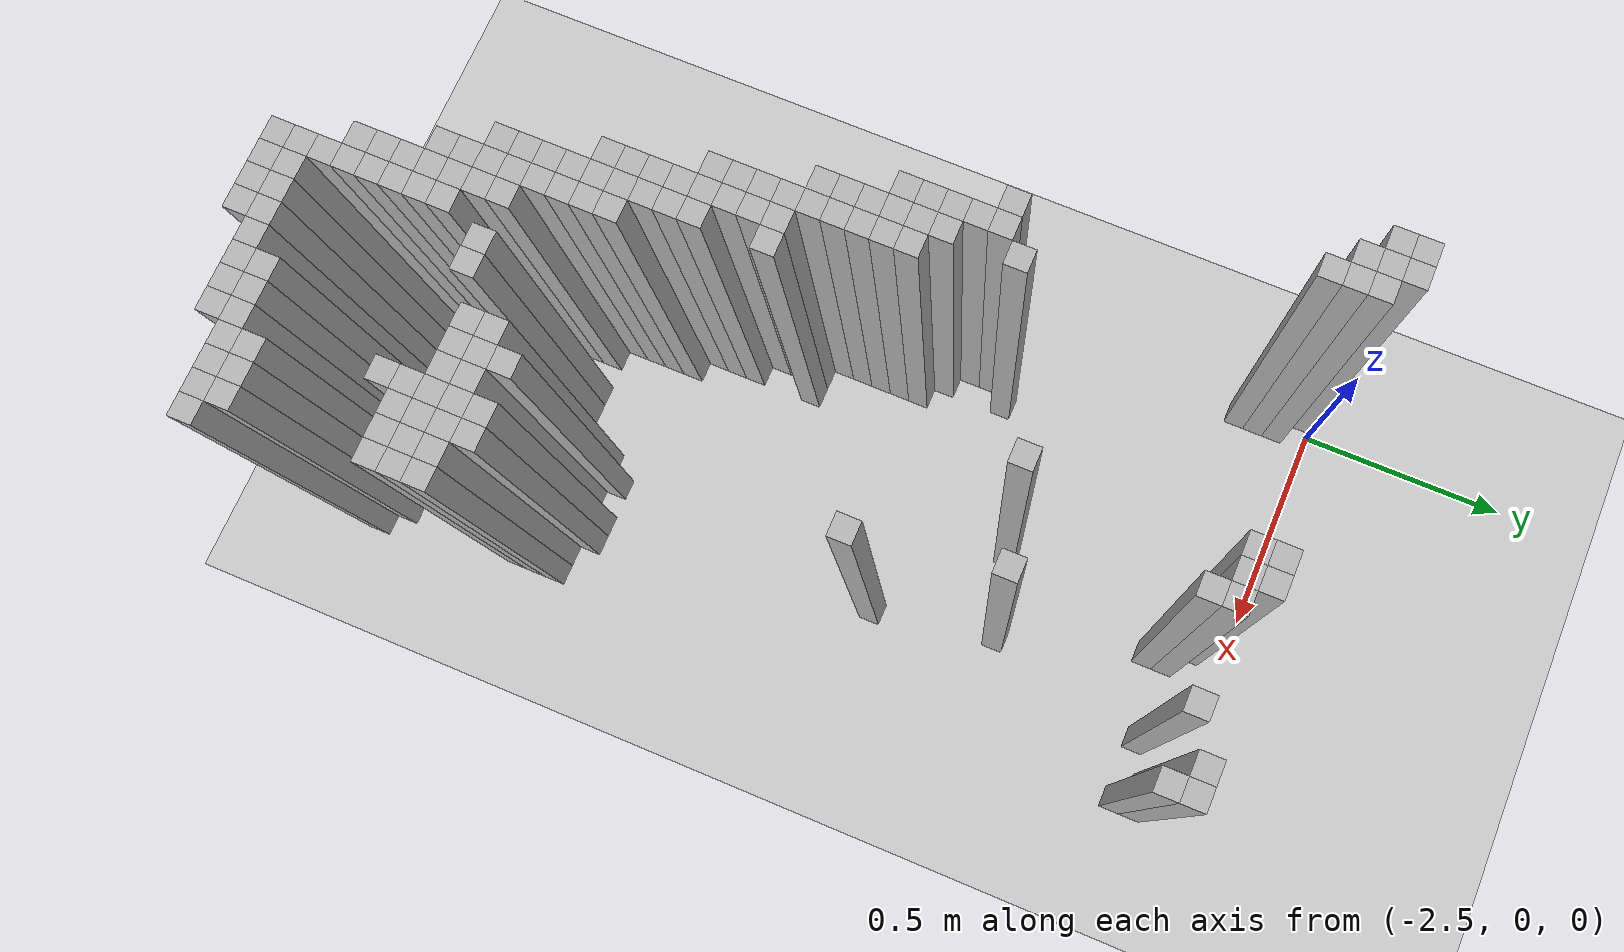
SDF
<sdf version="1.6">
 <world name="default">
  <include><uri>model://ground_plane</uri></include>
  <include><uri>model://sun</uri></include>
  <model name="wall_383">
   <static>true</static>
   <pose>-2.59 -0.03000000000000025 0.5 0 0 0</pose>
   <link name="link">
    <collision name="collision"><geometry><box><size>0.05 0.05 1</size></box></geometry></collision>
    <visual name="visual"><geometry><box><size>0.05 0.05 1</size></box></geometry></visual>
   </link>
  </model>
  <model name="wall_384">
   <static>true</static>
   <pose>-2.54 -0.03000000000000025 0.5 0 0 0</pose>
   <link name="link">
    <collision name="collision"><geometry><box><size>0.05 0.05 1</size></box></geometry></collision>
    <visual name="visual"><geometry><box><size>0.05 0.05 1</size></box></geometry></visual>
   </link>
  </model>
  <model name="wall_389">
   <static>true</static>
   <pose>-2.59 -0.08000000000000007 0.5 0 0 0</pose>
   <link name="link">
    <collision name="collision"><geometry><box><size>0.05 0.05 1</size></box></geometry></collision>
    <visual name="visual"><geometry><box><size>0.05 0.05 1</size></box></geometry></visual>
   </link>
  </model>
  <model name="wall_390">
   <static>true</static>
   <pose>-2.54 -0.08000000000000007 0.5 0 0 0</pose>
   <link name="link">
    <collision name="collision"><geometry><box><size>0.05 0.05 1</size></box></geometry></collision>
    <visual name="visual"><geometry><box><size>0.05 0.05 1</size></box></geometry></visual>
   </link>
  </model>
  <model name="wall_391">
   <static>true</static>
   <pose>-2.4899999999999998 -0.08000000000000007 0.5 0 0 0</pose>
   <link name="link">
    <collision name="collision"><geometry><box><size>0.05 0.05 1</size></box></geometry></collision>
    <visual name="visual"><geometry><box><size>0.05 0.05 1</size></box></geometry></visual>
   </link>
  </model>
  <model name="wall_392">
   <static>true</static>
   <pose>-1.94 -0.08000000000000007 0.5 0 0 0</pose>
   <link name="link">
    <collision name="collision"><geometry><box><size>0.05 0.05 1</size></box></geometry></collision>
    <visual name="visual"><geometry><box><size>0.05 0.05 1</size></box></geometry></visual>
   </link>
  </model>
  <model name="wall_393">
   <static>true</static>
   <pose>-1.8899999999999997 -0.08000000000000007 0.5 0 0 0</pose>
   <link name="link">
    <collision name="collision"><geometry><box><size>0.05 0.05 1</size></box></geometry></collision>
    <visual name="visual"><geometry><box><size>0.05 0.05 1</size></box></geometry></visual>
   </link>
  </model>
  <model name="wall_394">
   <static>true</static>
   <pose>-1.5399999999999998 -0.08000000000000007 0.5 0 0 0</pose>
   <link name="link">
    <collision name="collision"><geometry><box><size>0.05 0.05 1</size></box></geometry></collision>
    <visual name="visual"><geometry><box><size>0.05 0.05 1</size></box></geometry></visual>
   </link>
  </model>
  <model name="wall_395">
   <static>true</static>
   <pose>-1.4899999999999998 -0.08000000000000007 0.5 0 0 0</pose>
   <link name="link">
    <collision name="collision"><geometry><box><size>0.05 0.05 1</size></box></geometry></collision>
    <visual name="visual"><geometry><box><size>0.05 0.05 1</size></box></geometry></visual>
   </link>
  </model>
  <model name="wall_400">
   <static>true</static>
   <pose>-2.54 -0.1299999999999999 0.5 0 0 0</pose>
   <link name="link">
    <collision name="collision"><geometry><box><size>0.05 0.05 1</size></box></geometry></collision>
    <visual name="visual"><geometry><box><size>0.05 0.05 1</size></box></geometry></visual>
   </link>
  </model>
  <model name="wall_401">
   <static>true</static>
   <pose>-2.4899999999999998 -0.1299999999999999 0.5 0 0 0</pose>
   <link name="link">
    <collision name="collision"><geometry><box><size>0.05 0.05 1</size></box></geometry></collision>
    <visual name="visual"><geometry><box><size>0.05 0.05 1</size></box></geometry></visual>
   </link>
  </model>
  <model name="wall_402">
   <static>true</static>
   <pose>-1.94 -0.1299999999999999 0.5 0 0 0</pose>
   <link name="link">
    <collision name="collision"><geometry><box><size>0.05 0.05 1</size></box></geometry></collision>
    <visual name="visual"><geometry><box><size>0.05 0.05 1</size></box></geometry></visual>
   </link>
  </model>
  <model name="wall_403">
   <static>true</static>
   <pose>-1.8899999999999997 -0.1299999999999999 0.5 0 0 0</pose>
   <link name="link">
    <collision name="collision"><geometry><box><size>0.05 0.05 1</size></box></geometry></collision>
    <visual name="visual"><geometry><box><size>0.05 0.05 1</size></box></geometry></visual>
   </link>
  </model>
  <model name="wall_404">
   <static>true</static>
   <pose>-1.8399999999999999 -0.1299999999999999 0.5 0 0 0</pose>
   <link name="link">
    <collision name="collision"><geometry><box><size>0.05 0.05 1</size></box></geometry></collision>
    <visual name="visual"><geometry><box><size>0.05 0.05 1</size></box></geometry></visual>
   </link>
  </model>
  <model name="wall_405">
   <static>true</static>
   <pose>-1.6399999999999997 -0.1299999999999999 0.5 0 0 0</pose>
   <link name="link">
    <collision name="collision"><geometry><box><size>0.05 0.05 1</size></box></geometry></collision>
    <visual name="visual"><geometry><box><size>0.05 0.05 1</size></box></geometry></visual>
   </link>
  </model>
  <model name="wall_406">
   <static>true</static>
   <pose>-1.4899999999999998 -0.1299999999999999 0.5 0 0 0</pose>
   <link name="link">
    <collision name="collision"><geometry><box><size>0.05 0.05 1</size></box></geometry></collision>
    <visual name="visual"><geometry><box><size>0.05 0.05 1</size></box></geometry></visual>
   </link>
  </model>
  <model name="wall_415">
   <static>true</static>
   <pose>-2.4899999999999998 -0.18000000000000016 0.5 0 0 0</pose>
   <link name="link">
    <collision name="collision"><geometry><box><size>0.05 0.05 1</size></box></geometry></collision>
    <visual name="visual"><geometry><box><size>0.05 0.05 1</size></box></geometry></visual>
   </link>
  </model>
  <model name="wall_416">
   <static>true</static>
   <pose>-1.8399999999999999 -0.18000000000000016 0.5 0 0 0</pose>
   <link name="link">
    <collision name="collision"><geometry><box><size>0.05 0.05 1</size></box></geometry></collision>
    <visual name="visual"><geometry><box><size>0.05 0.05 1</size></box></geometry></visual>
   </link>
  </model>
  <model name="wall_461">
   <static>true</static>
   <pose>-1.7399999999999998 -0.53 0.5 0 0 0</pose>
   <link name="link">
    <collision name="collision"><geometry><box><size>0.05 0.05 1</size></box></geometry></collision>
    <visual name="visual"><geometry><box><size>0.05 0.05 1</size></box></geometry></visual>
   </link>
  </model>
  <model name="wall_465">
   <static>true</static>
   <pose>-1.94 -0.5800000000000001 0.5 0 0 0</pose>
   <link name="link">
    <collision name="collision"><geometry><box><size>0.05 0.05 1</size></box></geometry></collision>
    <visual name="visual"><geometry><box><size>0.05 0.05 1</size></box></geometry></visual>
   </link>
  </model>
  <model name="wall_480">
   <static>true</static>
   <pose>-2.29 -0.73 0.5 0 0 0</pose>
   <link name="link">
    <collision name="collision"><geometry><box><size>0.05 0.05 1</size></box></geometry></collision>
    <visual name="visual"><geometry><box><size>0.05 0.05 1</size></box></geometry></visual>
   </link>
  </model>
  <model name="wall_484">
   <static>true</static>
   <pose>-2.3899999999999997 -0.78 0.5 0 0 0</pose>
   <link name="link">
    <collision name="collision"><geometry><box><size>0.05 0.05 1</size></box></geometry></collision>
    <visual name="visual"><geometry><box><size>0.05 0.05 1</size></box></geometry></visual>
   </link>
  </model>
  <model name="wall_485">
   <static>true</static>
   <pose>-2.34 -0.78 0.5 0 0 0</pose>
   <link name="link">
    <collision name="collision"><geometry><box><size>0.05 0.05 1</size></box></geometry></collision>
    <visual name="visual"><geometry><box><size>0.05 0.05 1</size></box></geometry></visual>
   </link>
  </model>
  <model name="wall_491">
   <static>true</static>
   <pose>-2.34 -0.8300000000000001 0.5 0 0 0</pose>
   <link name="link">
    <collision name="collision"><geometry><box><size>0.05 0.05 1</size></box></geometry></collision>
    <visual name="visual"><geometry><box><size>0.05 0.05 1</size></box></geometry></visual>
   </link>
  </model>
  <model name="wall_492">
   <static>true</static>
   <pose>-1.6899999999999997 -0.8300000000000001 0.5 0 0 0</pose>
   <link name="link">
    <collision name="collision"><geometry><box><size>0.05 0.05 1</size></box></geometry></collision>
    <visual name="visual"><geometry><box><size>0.05 0.05 1</size></box></geometry></visual>
   </link>
  </model>
  <model name="wall_496">
   <static>true</static>
   <pose>-2.34 -0.8800000000000001 0.5 0 0 0</pose>
   <link name="link">
    <collision name="collision"><geometry><box><size>0.05 0.05 1</size></box></geometry></collision>
    <visual name="visual"><geometry><box><size>0.05 0.05 1</size></box></geometry></visual>
   </link>
  </model>
  <model name="wall_497">
   <static>true</static>
   <pose>-2.29 -0.8800000000000001 0.5 0 0 0</pose>
   <link name="link">
    <collision name="collision"><geometry><box><size>0.05 0.05 1</size></box></geometry></collision>
    <visual name="visual"><geometry><box><size>0.05 0.05 1</size></box></geometry></visual>
   </link>
  </model>
  <model name="wall_502">
   <static>true</static>
   <pose>-2.34 -0.9300000000000002 0.5 0 0 0</pose>
   <link name="link">
    <collision name="collision"><geometry><box><size>0.05 0.05 1</size></box></geometry></collision>
    <visual name="visual"><geometry><box><size>0.05 0.05 1</size></box></geometry></visual>
   </link>
  </model>
  <model name="wall_503">
   <static>true</static>
   <pose>-2.29 -0.9300000000000002 0.5 0 0 0</pose>
   <link name="link">
    <collision name="collision"><geometry><box><size>0.05 0.05 1</size></box></geometry></collision>
    <visual name="visual"><geometry><box><size>0.05 0.05 1</size></box></geometry></visual>
   </link>
  </model>
  <model name="wall_504">
   <static>true</static>
   <pose>-2.2399999999999998 -0.9300000000000002 0.5 0 0 0</pose>
   <link name="link">
    <collision name="collision"><geometry><box><size>0.05 0.05 1</size></box></geometry></collision>
    <visual name="visual"><geometry><box><size>0.05 0.05 1</size></box></geometry></visual>
   </link>
  </model>
  <model name="wall_508">
   <static>true</static>
   <pose>-2.34 -0.98 0.5 0 0 0</pose>
   <link name="link">
    <collision name="collision"><geometry><box><size>0.05 0.05 1</size></box></geometry></collision>
    <visual name="visual"><geometry><box><size>0.05 0.05 1</size></box></geometry></visual>
   </link>
  </model>
  <model name="wall_509">
   <static>true</static>
   <pose>-2.29 -0.98 0.5 0 0 0</pose>
   <link name="link">
    <collision name="collision"><geometry><box><size>0.05 0.05 1</size></box></geometry></collision>
    <visual name="visual"><geometry><box><size>0.05 0.05 1</size></box></geometry></visual>
   </link>
  </model>
  <model name="wall_510">
   <static>true</static>
   <pose>-2.2399999999999998 -0.98 0.5 0 0 0</pose>
   <link name="link">
    <collision name="collision"><geometry><box><size>0.05 0.05 1</size></box></geometry></collision>
    <visual name="visual"><geometry><box><size>0.05 0.05 1</size></box></geometry></visual>
   </link>
  </model>
  <model name="wall_514">
   <static>true</static>
   <pose>-2.29 -1.03 0.5 0 0 0</pose>
   <link name="link">
    <collision name="collision"><geometry><box><size>0.05 0.05 1</size></box></geometry></collision>
    <visual name="visual"><geometry><box><size>0.05 0.05 1</size></box></geometry></visual>
   </link>
  </model>
  <model name="wall_515">
   <static>true</static>
   <pose>-2.2399999999999998 -1.03 0.5 0 0 0</pose>
   <link name="link">
    <collision name="collision"><geometry><box><size>0.05 0.05 1</size></box></geometry></collision>
    <visual name="visual"><geometry><box><size>0.05 0.05 1</size></box></geometry></visual>
   </link>
  </model>
  <model name="wall_518">
   <static>true</static>
   <pose>-2.29 -1.08 0.5 0 0 0</pose>
   <link name="link">
    <collision name="collision"><geometry><box><size>0.05 0.05 1</size></box></geometry></collision>
    <visual name="visual"><geometry><box><size>0.05 0.05 1</size></box></geometry></visual>
   </link>
  </model>
  <model name="wall_519">
   <static>true</static>
   <pose>-2.2399999999999998 -1.08 0.5 0 0 0</pose>
   <link name="link">
    <collision name="collision"><geometry><box><size>0.05 0.05 1</size></box></geometry></collision>
    <visual name="visual"><geometry><box><size>0.05 0.05 1</size></box></geometry></visual>
   </link>
  </model>
  <model name="wall_522">
   <static>true</static>
   <pose>-2.29 -1.1300000000000001 0.5 0 0 0</pose>
   <link name="link">
    <collision name="collision"><geometry><box><size>0.05 0.05 1</size></box></geometry></collision>
    <visual name="visual"><geometry><box><size>0.05 0.05 1</size></box></geometry></visual>
   </link>
  </model>
  <model name="wall_523">
   <static>true</static>
   <pose>-2.2399999999999998 -1.1300000000000001 0.5 0 0 0</pose>
   <link name="link">
    <collision name="collision"><geometry><box><size>0.05 0.05 1</size></box></geometry></collision>
    <visual name="visual"><geometry><box><size>0.05 0.05 1</size></box></geometry></visual>
   </link>
  </model>
  <model name="wall_526">
   <static>true</static>
   <pose>-2.2399999999999998 -1.1800000000000002 0.5 0 0 0</pose>
   <link name="link">
    <collision name="collision"><geometry><box><size>0.05 0.05 1</size></box></geometry></collision>
    <visual name="visual"><geometry><box><size>0.05 0.05 1</size></box></geometry></visual>
   </link>
  </model>
  <model name="wall_527">
   <static>true</static>
   <pose>-2.19 -1.1800000000000002 0.5 0 0 0</pose>
   <link name="link">
    <collision name="collision"><geometry><box><size>0.05 0.05 1</size></box></geometry></collision>
    <visual name="visual"><geometry><box><size>0.05 0.05 1</size></box></geometry></visual>
   </link>
  </model>
  <model name="wall_528">
   <static>true</static>
   <pose>-2.1399999999999997 -1.1800000000000002 0.5 0 0 0</pose>
   <link name="link">
    <collision name="collision"><geometry><box><size>0.05 0.05 1</size></box></geometry></collision>
    <visual name="visual"><geometry><box><size>0.05 0.05 1</size></box></geometry></visual>
   </link>
  </model>
  <model name="wall_533">
   <static>true</static>
   <pose>-2.2399999999999998 -1.23 0.5 0 0 0</pose>
   <link name="link">
    <collision name="collision"><geometry><box><size>0.05 0.05 1</size></box></geometry></collision>
    <visual name="visual"><geometry><box><size>0.05 0.05 1</size></box></geometry></visual>
   </link>
  </model>
  <model name="wall_534">
   <static>true</static>
   <pose>-2.19 -1.23 0.5 0 0 0</pose>
   <link name="link">
    <collision name="collision"><geometry><box><size>0.05 0.05 1</size></box></geometry></collision>
    <visual name="visual"><geometry><box><size>0.05 0.05 1</size></box></geometry></visual>
   </link>
  </model>
  <model name="wall_547">
   <static>true</static>
   <pose>-2.2399999999999998 -1.2800000000000002 0.5 0 0 0</pose>
   <link name="link">
    <collision name="collision"><geometry><box><size>0.05 0.05 1</size></box></geometry></collision>
    <visual name="visual"><geometry><box><size>0.05 0.05 1</size></box></geometry></visual>
   </link>
  </model>
  <model name="wall_548">
   <static>true</static>
   <pose>-2.19 -1.2800000000000002 0.5 0 0 0</pose>
   <link name="link">
    <collision name="collision"><geometry><box><size>0.05 0.05 1</size></box></geometry></collision>
    <visual name="visual"><geometry><box><size>0.05 0.05 1</size></box></geometry></visual>
   </link>
  </model>
  <model name="wall_561">
   <static>true</static>
   <pose>-2.2399999999999998 -1.33 0.5 0 0 0</pose>
   <link name="link">
    <collision name="collision"><geometry><box><size>0.05 0.05 1</size></box></geometry></collision>
    <visual name="visual"><geometry><box><size>0.05 0.05 1</size></box></geometry></visual>
   </link>
  </model>
  <model name="wall_562">
   <static>true</static>
   <pose>-2.19 -1.33 0.5 0 0 0</pose>
   <link name="link">
    <collision name="collision"><geometry><box><size>0.05 0.05 1</size></box></geometry></collision>
    <visual name="visual"><geometry><box><size>0.05 0.05 1</size></box></geometry></visual>
   </link>
  </model>
  <model name="wall_563">
   <static>true</static>
   <pose>-2.1399999999999997 -1.33 0.5 0 0 0</pose>
   <link name="link">
    <collision name="collision"><geometry><box><size>0.05 0.05 1</size></box></geometry></collision>
    <visual name="visual"><geometry><box><size>0.05 0.05 1</size></box></geometry></visual>
   </link>
  </model>
  <model name="wall_574">
   <static>true</static>
   <pose>-2.19 -1.3800000000000001 0.5 0 0 0</pose>
   <link name="link">
    <collision name="collision"><geometry><box><size>0.05 0.05 1</size></box></geometry></collision>
    <visual name="visual"><geometry><box><size>0.05 0.05 1</size></box></geometry></visual>
   </link>
  </model>
  <model name="wall_575">
   <static>true</static>
   <pose>-2.1399999999999997 -1.3800000000000001 0.5 0 0 0</pose>
   <link name="link">
    <collision name="collision"><geometry><box><size>0.05 0.05 1</size></box></geometry></collision>
    <visual name="visual"><geometry><box><size>0.05 0.05 1</size></box></geometry></visual>
   </link>
  </model>
  <model name="wall_584">
   <static>true</static>
   <pose>-2.19 -1.4300000000000002 0.5 0 0 0</pose>
   <link name="link">
    <collision name="collision"><geometry><box><size>0.05 0.05 1</size></box></geometry></collision>
    <visual name="visual"><geometry><box><size>0.05 0.05 1</size></box></geometry></visual>
   </link>
  </model>
  <model name="wall_585">
   <static>true</static>
   <pose>-2.1399999999999997 -1.4300000000000002 0.5 0 0 0</pose>
   <link name="link">
    <collision name="collision"><geometry><box><size>0.05 0.05 1</size></box></geometry></collision>
    <visual name="visual"><geometry><box><size>0.05 0.05 1</size></box></geometry></visual>
   </link>
  </model>
  <model name="wall_593">
   <static>true</static>
   <pose>-2.19 -1.48 0.5 0 0 0</pose>
   <link name="link">
    <collision name="collision"><geometry><box><size>0.05 0.05 1</size></box></geometry></collision>
    <visual name="visual"><geometry><box><size>0.05 0.05 1</size></box></geometry></visual>
   </link>
  </model>
  <model name="wall_594">
   <static>true</static>
   <pose>-2.1399999999999997 -1.48 0.5 0 0 0</pose>
   <link name="link">
    <collision name="collision"><geometry><box><size>0.05 0.05 1</size></box></geometry></collision>
    <visual name="visual"><geometry><box><size>0.05 0.05 1</size></box></geometry></visual>
   </link>
  </model>
  <model name="wall_595">
   <static>true</static>
   <pose>-2.09 -1.48 0.5 0 0 0</pose>
   <link name="link">
    <collision name="collision"><geometry><box><size>0.05 0.05 1</size></box></geometry></collision>
    <visual name="visual"><geometry><box><size>0.05 0.05 1</size></box></geometry></visual>
   </link>
  </model>
  <model name="wall_603">
   <static>true</static>
   <pose>-2.19 -1.5300000000000002 0.5 0 0 0</pose>
   <link name="link">
    <collision name="collision"><geometry><box><size>0.05 0.05 1</size></box></geometry></collision>
    <visual name="visual"><geometry><box><size>0.05 0.05 1</size></box></geometry></visual>
   </link>
  </model>
  <model name="wall_604">
   <static>true</static>
   <pose>-2.1399999999999997 -1.5300000000000002 0.5 0 0 0</pose>
   <link name="link">
    <collision name="collision"><geometry><box><size>0.05 0.05 1</size></box></geometry></collision>
    <visual name="visual"><geometry><box><size>0.05 0.05 1</size></box></geometry></visual>
   </link>
  </model>
  <model name="wall_605">
   <static>true</static>
   <pose>-2.09 -1.5300000000000002 0.5 0 0 0</pose>
   <link name="link">
    <collision name="collision"><geometry><box><size>0.05 0.05 1</size></box></geometry></collision>
    <visual name="visual"><geometry><box><size>0.05 0.05 1</size></box></geometry></visual>
   </link>
  </model>
  <model name="wall_606">
   <static>true</static>
   <pose>-1.7399999999999998 -1.5300000000000002 0.5 0 0 0</pose>
   <link name="link">
    <collision name="collision"><geometry><box><size>0.05 0.05 1</size></box></geometry></collision>
    <visual name="visual"><geometry><box><size>0.05 0.05 1</size></box></geometry></visual>
   </link>
  </model>
  <model name="wall_607">
   <static>true</static>
   <pose>-1.6399999999999997 -1.5300000000000002 0.5 0 0 0</pose>
   <link name="link">
    <collision name="collision"><geometry><box><size>0.05 0.05 1</size></box></geometry></collision>
    <visual name="visual"><geometry><box><size>0.05 0.05 1</size></box></geometry></visual>
   </link>
  </model>
  <model name="wall_608">
   <static>true</static>
   <pose>-1.5899999999999999 -1.5300000000000002 0.5 0 0 0</pose>
   <link name="link">
    <collision name="collision"><geometry><box><size>0.05 0.05 1</size></box></geometry></collision>
    <visual name="visual"><geometry><box><size>0.05 0.05 1</size></box></geometry></visual>
   </link>
  </model>
  <model name="wall_617">
   <static>true</static>
   <pose>-2.1399999999999997 -1.58 0.5 0 0 0</pose>
   <link name="link">
    <collision name="collision"><geometry><box><size>0.05 0.05 1</size></box></geometry></collision>
    <visual name="visual"><geometry><box><size>0.05 0.05 1</size></box></geometry></visual>
   </link>
  </model>
  <model name="wall_618">
   <static>true</static>
   <pose>-2.09 -1.58 0.5 0 0 0</pose>
   <link name="link">
    <collision name="collision"><geometry><box><size>0.05 0.05 1</size></box></geometry></collision>
    <visual name="visual"><geometry><box><size>0.05 0.05 1</size></box></geometry></visual>
   </link>
  </model>
  <model name="wall_619">
   <static>true</static>
   <pose>-1.7899999999999998 -1.58 0.5 0 0 0</pose>
   <link name="link">
    <collision name="collision"><geometry><box><size>0.05 0.05 1</size></box></geometry></collision>
    <visual name="visual"><geometry><box><size>0.05 0.05 1</size></box></geometry></visual>
   </link>
  </model>
  <model name="wall_620">
   <static>true</static>
   <pose>-1.7399999999999998 -1.58 0.5 0 0 0</pose>
   <link name="link">
    <collision name="collision"><geometry><box><size>0.05 0.05 1</size></box></geometry></collision>
    <visual name="visual"><geometry><box><size>0.05 0.05 1</size></box></geometry></visual>
   </link>
  </model>
  <model name="wall_621">
   <static>true</static>
   <pose>-1.6899999999999997 -1.58 0.5 0 0 0</pose>
   <link name="link">
    <collision name="collision"><geometry><box><size>0.05 0.05 1</size></box></geometry></collision>
    <visual name="visual"><geometry><box><size>0.05 0.05 1</size></box></geometry></visual>
   </link>
  </model>
  <model name="wall_622">
   <static>true</static>
   <pose>-1.6399999999999997 -1.58 0.5 0 0 0</pose>
   <link name="link">
    <collision name="collision"><geometry><box><size>0.05 0.05 1</size></box></geometry></collision>
    <visual name="visual"><geometry><box><size>0.05 0.05 1</size></box></geometry></visual>
   </link>
  </model>
  <model name="wall_623">
   <static>true</static>
   <pose>-1.5899999999999999 -1.58 0.5 0 0 0</pose>
   <link name="link">
    <collision name="collision"><geometry><box><size>0.05 0.05 1</size></box></geometry></collision>
    <visual name="visual"><geometry><box><size>0.05 0.05 1</size></box></geometry></visual>
   </link>
  </model>
  <model name="wall_624">
   <static>true</static>
   <pose>-1.5399999999999998 -1.58 0.5 0 0 0</pose>
   <link name="link">
    <collision name="collision"><geometry><box><size>0.05 0.05 1</size></box></geometry></collision>
    <visual name="visual"><geometry><box><size>0.05 0.05 1</size></box></geometry></visual>
   </link>
  </model>
  <model name="wall_625">
   <static>true</static>
   <pose>-1.4899999999999998 -1.58 0.5 0 0 0</pose>
   <link name="link">
    <collision name="collision"><geometry><box><size>0.05 0.05 1</size></box></geometry></collision>
    <visual name="visual"><geometry><box><size>0.05 0.05 1</size></box></geometry></visual>
   </link>
  </model>
  <model name="wall_634">
   <static>true</static>
   <pose>-2.1399999999999997 -1.6300000000000001 0.5 0 0 0</pose>
   <link name="link">
    <collision name="collision"><geometry><box><size>0.05 0.05 1</size></box></geometry></collision>
    <visual name="visual"><geometry><box><size>0.05 0.05 1</size></box></geometry></visual>
   </link>
  </model>
  <model name="wall_635">
   <static>true</static>
   <pose>-2.09 -1.6300000000000001 0.5 0 0 0</pose>
   <link name="link">
    <collision name="collision"><geometry><box><size>0.05 0.05 1</size></box></geometry></collision>
    <visual name="visual"><geometry><box><size>0.05 0.05 1</size></box></geometry></visual>
   </link>
  </model>
  <model name="wall_636">
   <static>true</static>
   <pose>-1.7899999999999998 -1.6300000000000001 0.5 0 0 0</pose>
   <link name="link">
    <collision name="collision"><geometry><box><size>0.05 0.05 1</size></box></geometry></collision>
    <visual name="visual"><geometry><box><size>0.05 0.05 1</size></box></geometry></visual>
   </link>
  </model>
  <model name="wall_637">
   <static>true</static>
   <pose>-1.7399999999999998 -1.6300000000000001 0.5 0 0 0</pose>
   <link name="link">
    <collision name="collision"><geometry><box><size>0.05 0.05 1</size></box></geometry></collision>
    <visual name="visual"><geometry><box><size>0.05 0.05 1</size></box></geometry></visual>
   </link>
  </model>
  <model name="wall_638">
   <static>true</static>
   <pose>-1.6899999999999997 -1.6300000000000001 0.5 0 0 0</pose>
   <link name="link">
    <collision name="collision"><geometry><box><size>0.05 0.05 1</size></box></geometry></collision>
    <visual name="visual"><geometry><box><size>0.05 0.05 1</size></box></geometry></visual>
   </link>
  </model>
  <model name="wall_639">
   <static>true</static>
   <pose>-1.6399999999999997 -1.6300000000000001 0.5 0 0 0</pose>
   <link name="link">
    <collision name="collision"><geometry><box><size>0.05 0.05 1</size></box></geometry></collision>
    <visual name="visual"><geometry><box><size>0.05 0.05 1</size></box></geometry></visual>
   </link>
  </model>
  <model name="wall_640">
   <static>true</static>
   <pose>-1.5899999999999999 -1.6300000000000001 0.5 0 0 0</pose>
   <link name="link">
    <collision name="collision"><geometry><box><size>0.05 0.05 1</size></box></geometry></collision>
    <visual name="visual"><geometry><box><size>0.05 0.05 1</size></box></geometry></visual>
   </link>
  </model>
  <model name="wall_641">
   <static>true</static>
   <pose>-1.5399999999999998 -1.6300000000000001 0.5 0 0 0</pose>
   <link name="link">
    <collision name="collision"><geometry><box><size>0.05 0.05 1</size></box></geometry></collision>
    <visual name="visual"><geometry><box><size>0.05 0.05 1</size></box></geometry></visual>
   </link>
  </model>
  <model name="wall_642">
   <static>true</static>
   <pose>-1.4899999999999998 -1.6300000000000001 0.5 0 0 0</pose>
   <link name="link">
    <collision name="collision"><geometry><box><size>0.05 0.05 1</size></box></geometry></collision>
    <visual name="visual"><geometry><box><size>0.05 0.05 1</size></box></geometry></visual>
   </link>
  </model>
  <model name="wall_652">
   <static>true</static>
   <pose>-2.1399999999999997 -1.6800000000000002 0.5 0 0 0</pose>
   <link name="link">
    <collision name="collision"><geometry><box><size>0.05 0.05 1</size></box></geometry></collision>
    <visual name="visual"><geometry><box><size>0.05 0.05 1</size></box></geometry></visual>
   </link>
  </model>
  <model name="wall_653">
   <static>true</static>
   <pose>-2.09 -1.6800000000000002 0.5 0 0 0</pose>
   <link name="link">
    <collision name="collision"><geometry><box><size>0.05 0.05 1</size></box></geometry></collision>
    <visual name="visual"><geometry><box><size>0.05 0.05 1</size></box></geometry></visual>
   </link>
  </model>
  <model name="wall_654">
   <static>true</static>
   <pose>-2.04 -1.6800000000000002 0.5 0 0 0</pose>
   <link name="link">
    <collision name="collision"><geometry><box><size>0.05 0.05 1</size></box></geometry></collision>
    <visual name="visual"><geometry><box><size>0.05 0.05 1</size></box></geometry></visual>
   </link>
  </model>
  <model name="wall_655">
   <static>true</static>
   <pose>-1.94 -1.6800000000000002 0.5 0 0 0</pose>
   <link name="link">
    <collision name="collision"><geometry><box><size>0.05 0.05 1</size></box></geometry></collision>
    <visual name="visual"><geometry><box><size>0.05 0.05 1</size></box></geometry></visual>
   </link>
  </model>
  <model name="wall_656">
   <static>true</static>
   <pose>-1.8899999999999997 -1.6800000000000002 0.5 0 0 0</pose>
   <link name="link">
    <collision name="collision"><geometry><box><size>0.05 0.05 1</size></box></geometry></collision>
    <visual name="visual"><geometry><box><size>0.05 0.05 1</size></box></geometry></visual>
   </link>
  </model>
  <model name="wall_657">
   <static>true</static>
   <pose>-1.6399999999999997 -1.6800000000000002 0.5 0 0 0</pose>
   <link name="link">
    <collision name="collision"><geometry><box><size>0.05 0.05 1</size></box></geometry></collision>
    <visual name="visual"><geometry><box><size>0.05 0.05 1</size></box></geometry></visual>
   </link>
  </model>
  <model name="wall_658">
   <static>true</static>
   <pose>-1.5899999999999999 -1.6800000000000002 0.5 0 0 0</pose>
   <link name="link">
    <collision name="collision"><geometry><box><size>0.05 0.05 1</size></box></geometry></collision>
    <visual name="visual"><geometry><box><size>0.05 0.05 1</size></box></geometry></visual>
   </link>
  </model>
  <model name="wall_659">
   <static>true</static>
   <pose>-1.5399999999999998 -1.6800000000000002 0.5 0 0 0</pose>
   <link name="link">
    <collision name="collision"><geometry><box><size>0.05 0.05 1</size></box></geometry></collision>
    <visual name="visual"><geometry><box><size>0.05 0.05 1</size></box></geometry></visual>
   </link>
  </model>
  <model name="wall_660">
   <static>true</static>
   <pose>-1.4899999999999998 -1.6800000000000002 0.5 0 0 0</pose>
   <link name="link">
    <collision name="collision"><geometry><box><size>0.05 0.05 1</size></box></geometry></collision>
    <visual name="visual"><geometry><box><size>0.05 0.05 1</size></box></geometry></visual>
   </link>
  </model>
  <model name="wall_670">
   <static>true</static>
   <pose>-2.1399999999999997 -1.7300000000000002 0.5 0 0 0</pose>
   <link name="link">
    <collision name="collision"><geometry><box><size>0.05 0.05 1</size></box></geometry></collision>
    <visual name="visual"><geometry><box><size>0.05 0.05 1</size></box></geometry></visual>
   </link>
  </model>
  <model name="wall_671">
   <static>true</static>
   <pose>-2.09 -1.7300000000000002 0.5 0 0 0</pose>
   <link name="link">
    <collision name="collision"><geometry><box><size>0.05 0.05 1</size></box></geometry></collision>
    <visual name="visual"><geometry><box><size>0.05 0.05 1</size></box></geometry></visual>
   </link>
  </model>
  <model name="wall_672">
   <static>true</static>
   <pose>-2.04 -1.7300000000000002 0.5 0 0 0</pose>
   <link name="link">
    <collision name="collision"><geometry><box><size>0.05 0.05 1</size></box></geometry></collision>
    <visual name="visual"><geometry><box><size>0.05 0.05 1</size></box></geometry></visual>
   </link>
  </model>
  <model name="wall_673">
   <static>true</static>
   <pose>-1.6399999999999997 -1.7300000000000002 0.5 0 0 0</pose>
   <link name="link">
    <collision name="collision"><geometry><box><size>0.05 0.05 1</size></box></geometry></collision>
    <visual name="visual"><geometry><box><size>0.05 0.05 1</size></box></geometry></visual>
   </link>
  </model>
  <model name="wall_684">
   <static>true</static>
   <pose>-2.09 -1.7800000000000002 0.5 0 0 0</pose>
   <link name="link">
    <collision name="collision"><geometry><box><size>0.05 0.05 1</size></box></geometry></collision>
    <visual name="visual"><geometry><box><size>0.05 0.05 1</size></box></geometry></visual>
   </link>
  </model>
  <model name="wall_685">
   <static>true</static>
   <pose>-2.04 -1.7800000000000002 0.5 0 0 0</pose>
   <link name="link">
    <collision name="collision"><geometry><box><size>0.05 0.05 1</size></box></geometry></collision>
    <visual name="visual"><geometry><box><size>0.05 0.05 1</size></box></geometry></visual>
   </link>
  </model>
  <model name="wall_686">
   <static>true</static>
   <pose>-1.9899999999999998 -1.7800000000000002 0.5 0 0 0</pose>
   <link name="link">
    <collision name="collision"><geometry><box><size>0.05 0.05 1</size></box></geometry></collision>
    <visual name="visual"><geometry><box><size>0.05 0.05 1</size></box></geometry></visual>
   </link>
  </model>
  <model name="wall_699">
   <static>true</static>
   <pose>-2.09 -1.83 0.5 0 0 0</pose>
   <link name="link">
    <collision name="collision"><geometry><box><size>0.05 0.05 1</size></box></geometry></collision>
    <visual name="visual"><geometry><box><size>0.05 0.05 1</size></box></geometry></visual>
   </link>
  </model>
  <model name="wall_700">
   <static>true</static>
   <pose>-2.04 -1.83 0.5 0 0 0</pose>
   <link name="link">
    <collision name="collision"><geometry><box><size>0.05 0.05 1</size></box></geometry></collision>
    <visual name="visual"><geometry><box><size>0.05 0.05 1</size></box></geometry></visual>
   </link>
  </model>
  <model name="wall_701">
   <static>true</static>
   <pose>-1.9899999999999998 -1.83 0.5 0 0 0</pose>
   <link name="link">
    <collision name="collision"><geometry><box><size>0.05 0.05 1</size></box></geometry></collision>
    <visual name="visual"><geometry><box><size>0.05 0.05 1</size></box></geometry></visual>
   </link>
  </model>
  <model name="wall_710">
   <static>true</static>
   <pose>-2.04 -1.8800000000000001 0.5 0 0 0</pose>
   <link name="link">
    <collision name="collision"><geometry><box><size>0.05 0.05 1</size></box></geometry></collision>
    <visual name="visual"><geometry><box><size>0.05 0.05 1</size></box></geometry></visual>
   </link>
  </model>
  <model name="wall_711">
   <static>true</static>
   <pose>-1.9899999999999998 -1.8800000000000001 0.5 0 0 0</pose>
   <link name="link">
    <collision name="collision"><geometry><box><size>0.05 0.05 1</size></box></geometry></collision>
    <visual name="visual"><geometry><box><size>0.05 0.05 1</size></box></geometry></visual>
   </link>
  </model>
  <model name="wall_720">
   <static>true</static>
   <pose>-2.04 -1.9300000000000002 0.5 0 0 0</pose>
   <link name="link">
    <collision name="collision"><geometry><box><size>0.05 0.05 1</size></box></geometry></collision>
    <visual name="visual"><geometry><box><size>0.05 0.05 1</size></box></geometry></visual>
   </link>
  </model>
  <model name="wall_721">
   <static>true</static>
   <pose>-1.9899999999999998 -1.9300000000000002 0.5 0 0 0</pose>
   <link name="link">
    <collision name="collision"><geometry><box><size>0.05 0.05 1</size></box></geometry></collision>
    <visual name="visual"><geometry><box><size>0.05 0.05 1</size></box></geometry></visual>
   </link>
  </model>
  <model name="wall_730">
   <static>true</static>
   <pose>-2.04 -1.9800000000000002 0.5 0 0 0</pose>
   <link name="link">
    <collision name="collision"><geometry><box><size>0.05 0.05 1</size></box></geometry></collision>
    <visual name="visual"><geometry><box><size>0.05 0.05 1</size></box></geometry></visual>
   </link>
  </model>
  <model name="wall_731">
   <static>true</static>
   <pose>-1.9899999999999998 -1.9800000000000002 0.5 0 0 0</pose>
   <link name="link">
    <collision name="collision"><geometry><box><size>0.05 0.05 1</size></box></geometry></collision>
    <visual name="visual"><geometry><box><size>0.05 0.05 1</size></box></geometry></visual>
   </link>
  </model>
  <model name="wall_732">
   <static>true</static>
   <pose>-1.5899999999999999 -1.9800000000000002 0.5 0 0 0</pose>
   <link name="link">
    <collision name="collision"><geometry><box><size>0.05 0.05 1</size></box></geometry></collision>
    <visual name="visual"><geometry><box><size>0.05 0.05 1</size></box></geometry></visual>
   </link>
  </model>
  <model name="wall_733">
   <static>true</static>
   <pose>-1.5399999999999998 -1.9800000000000002 0.5 0 0 0</pose>
   <link name="link">
    <collision name="collision"><geometry><box><size>0.05 0.05 1</size></box></geometry></collision>
    <visual name="visual"><geometry><box><size>0.05 0.05 1</size></box></geometry></visual>
   </link>
  </model>
  <model name="wall_734">
   <static>true</static>
   <pose>-1.4899999999999998 -1.9800000000000002 0.5 0 0 0</pose>
   <link name="link">
    <collision name="collision"><geometry><box><size>0.05 0.05 1</size></box></geometry></collision>
    <visual name="visual"><geometry><box><size>0.05 0.05 1</size></box></geometry></visual>
   </link>
  </model>
  <model name="wall_742">
   <static>true</static>
   <pose>-1.9899999999999998 -2.0300000000000002 0.5 0 0 0</pose>
   <link name="link">
    <collision name="collision"><geometry><box><size>0.05 0.05 1</size></box></geometry></collision>
    <visual name="visual"><geometry><box><size>0.05 0.05 1</size></box></geometry></visual>
   </link>
  </model>
  <model name="wall_743">
   <static>true</static>
   <pose>-1.7399999999999998 -2.0300000000000002 0.5 0 0 0</pose>
   <link name="link">
    <collision name="collision"><geometry><box><size>0.05 0.05 1</size></box></geometry></collision>
    <visual name="visual"><geometry><box><size>0.05 0.05 1</size></box></geometry></visual>
   </link>
  </model>
  <model name="wall_744">
   <static>true</static>
   <pose>-1.6899999999999997 -2.0300000000000002 0.5 0 0 0</pose>
   <link name="link">
    <collision name="collision"><geometry><box><size>0.05 0.05 1</size></box></geometry></collision>
    <visual name="visual"><geometry><box><size>0.05 0.05 1</size></box></geometry></visual>
   </link>
  </model>
  <model name="wall_745">
   <static>true</static>
   <pose>-1.6399999999999997 -2.0300000000000002 0.5 0 0 0</pose>
   <link name="link">
    <collision name="collision"><geometry><box><size>0.05 0.05 1</size></box></geometry></collision>
    <visual name="visual"><geometry><box><size>0.05 0.05 1</size></box></geometry></visual>
   </link>
  </model>
  <model name="wall_746">
   <static>true</static>
   <pose>-1.5899999999999999 -2.0300000000000002 0.5 0 0 0</pose>
   <link name="link">
    <collision name="collision"><geometry><box><size>0.05 0.05 1</size></box></geometry></collision>
    <visual name="visual"><geometry><box><size>0.05 0.05 1</size></box></geometry></visual>
   </link>
  </model>
  <model name="wall_747">
   <static>true</static>
   <pose>-1.5399999999999998 -2.0300000000000002 0.5 0 0 0</pose>
   <link name="link">
    <collision name="collision"><geometry><box><size>0.05 0.05 1</size></box></geometry></collision>
    <visual name="visual"><geometry><box><size>0.05 0.05 1</size></box></geometry></visual>
   </link>
  </model>
  <model name="wall_748">
   <static>true</static>
   <pose>-1.4899999999999998 -2.0300000000000002 0.5 0 0 0</pose>
   <link name="link">
    <collision name="collision"><geometry><box><size>0.05 0.05 1</size></box></geometry></collision>
    <visual name="visual"><geometry><box><size>0.05 0.05 1</size></box></geometry></visual>
   </link>
  </model>
  <model name="wall_749">
   <static>true</static>
   <pose>-1.4399999999999997 -2.0300000000000002 0.5 0 0 0</pose>
   <link name="link">
    <collision name="collision"><geometry><box><size>0.05 0.05 1</size></box></geometry></collision>
    <visual name="visual"><geometry><box><size>0.05 0.05 1</size></box></geometry></visual>
   </link>
  </model>
  <model name="wall_752">
   <static>true</static>
   <pose>-1.9899999999999998 -2.08 0.5 0 0 0</pose>
   <link name="link">
    <collision name="collision"><geometry><box><size>0.05 0.05 1</size></box></geometry></collision>
    <visual name="visual"><geometry><box><size>0.05 0.05 1</size></box></geometry></visual>
   </link>
  </model>
  <model name="wall_753">
   <static>true</static>
   <pose>-1.94 -2.08 0.5 0 0 0</pose>
   <link name="link">
    <collision name="collision"><geometry><box><size>0.05 0.05 1</size></box></geometry></collision>
    <visual name="visual"><geometry><box><size>0.05 0.05 1</size></box></geometry></visual>
   </link>
  </model>
  <model name="wall_754">
   <static>true</static>
   <pose>-1.8899999999999997 -2.08 0.5 0 0 0</pose>
   <link name="link">
    <collision name="collision"><geometry><box><size>0.05 0.05 1</size></box></geometry></collision>
    <visual name="visual"><geometry><box><size>0.05 0.05 1</size></box></geometry></visual>
   </link>
  </model>
  <model name="wall_755">
   <static>true</static>
   <pose>-1.8399999999999999 -2.08 0.5 0 0 0</pose>
   <link name="link">
    <collision name="collision"><geometry><box><size>0.05 0.05 1</size></box></geometry></collision>
    <visual name="visual"><geometry><box><size>0.05 0.05 1</size></box></geometry></visual>
   </link>
  </model>
  <model name="wall_756">
   <static>true</static>
   <pose>-1.7899999999999998 -2.08 0.5 0 0 0</pose>
   <link name="link">
    <collision name="collision"><geometry><box><size>0.05 0.05 1</size></box></geometry></collision>
    <visual name="visual"><geometry><box><size>0.05 0.05 1</size></box></geometry></visual>
   </link>
  </model>
  <model name="wall_757">
   <static>true</static>
   <pose>-1.7399999999999998 -2.08 0.5 0 0 0</pose>
   <link name="link">
    <collision name="collision"><geometry><box><size>0.05 0.05 1</size></box></geometry></collision>
    <visual name="visual"><geometry><box><size>0.05 0.05 1</size></box></geometry></visual>
   </link>
  </model>
  <model name="wall_758">
   <static>true</static>
   <pose>-1.6899999999999997 -2.08 0.5 0 0 0</pose>
   <link name="link">
    <collision name="collision"><geometry><box><size>0.05 0.05 1</size></box></geometry></collision>
    <visual name="visual"><geometry><box><size>0.05 0.05 1</size></box></geometry></visual>
   </link>
  </model>
  <model name="wall_759">
   <static>true</static>
   <pose>-1.6399999999999997 -2.08 0.5 0 0 0</pose>
   <link name="link">
    <collision name="collision"><geometry><box><size>0.05 0.05 1</size></box></geometry></collision>
    <visual name="visual"><geometry><box><size>0.05 0.05 1</size></box></geometry></visual>
   </link>
  </model>
  <model name="wall_760">
   <static>true</static>
   <pose>-1.9899999999999998 -2.1300000000000003 0.5 0 0 0</pose>
   <link name="link">
    <collision name="collision"><geometry><box><size>0.05 0.05 1</size></box></geometry></collision>
    <visual name="visual"><geometry><box><size>0.05 0.05 1</size></box></geometry></visual>
   </link>
  </model>
  <model name="wall_761">
   <static>true</static>
   <pose>-1.94 -2.1300000000000003 0.5 0 0 0</pose>
   <link name="link">
    <collision name="collision"><geometry><box><size>0.05 0.05 1</size></box></geometry></collision>
    <visual name="visual"><geometry><box><size>0.05 0.05 1</size></box></geometry></visual>
   </link>
  </model>
  <model name="wall_762">
   <static>true</static>
   <pose>-1.8899999999999997 -2.1300000000000003 0.5 0 0 0</pose>
   <link name="link">
    <collision name="collision"><geometry><box><size>0.05 0.05 1</size></box></geometry></collision>
    <visual name="visual"><geometry><box><size>0.05 0.05 1</size></box></geometry></visual>
   </link>
  </model>
  <model name="wall_763">
   <static>true</static>
   <pose>-1.8399999999999999 -2.1300000000000003 0.5 0 0 0</pose>
   <link name="link">
    <collision name="collision"><geometry><box><size>0.05 0.05 1</size></box></geometry></collision>
    <visual name="visual"><geometry><box><size>0.05 0.05 1</size></box></geometry></visual>
   </link>
  </model>
 </world>
</sdf>
